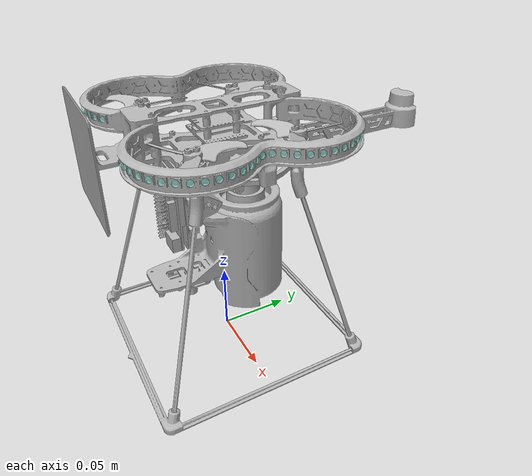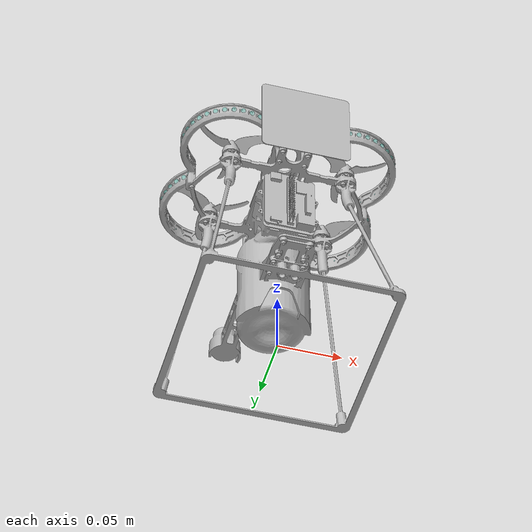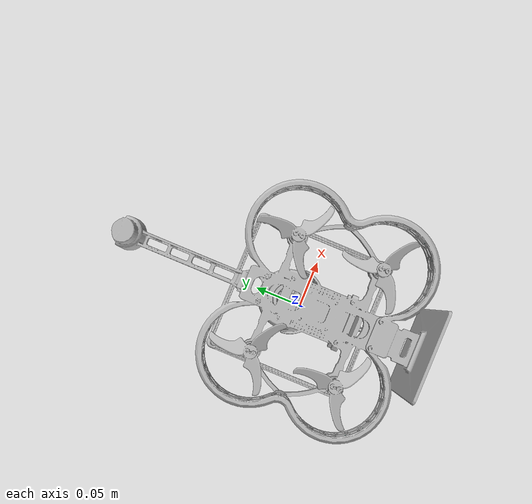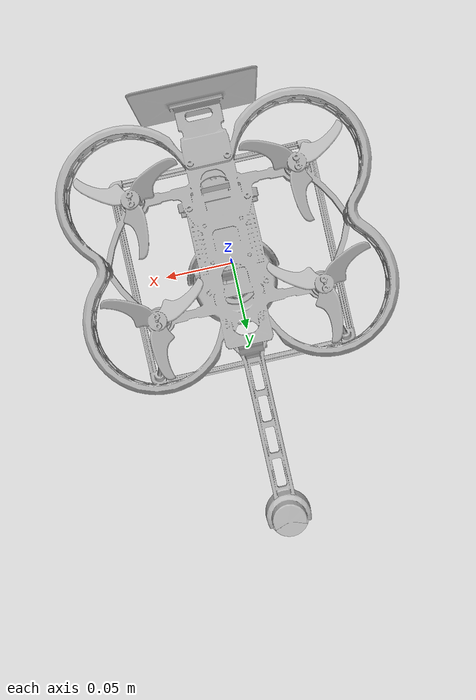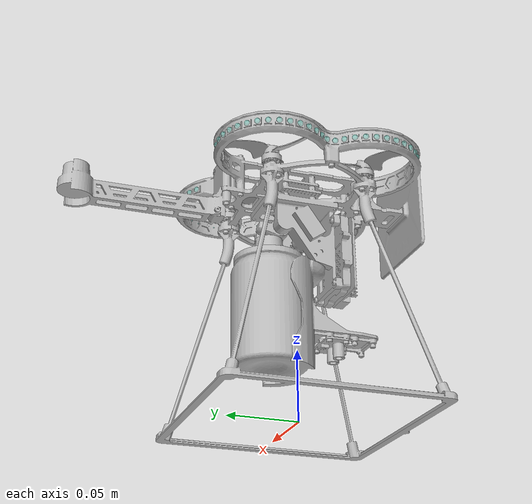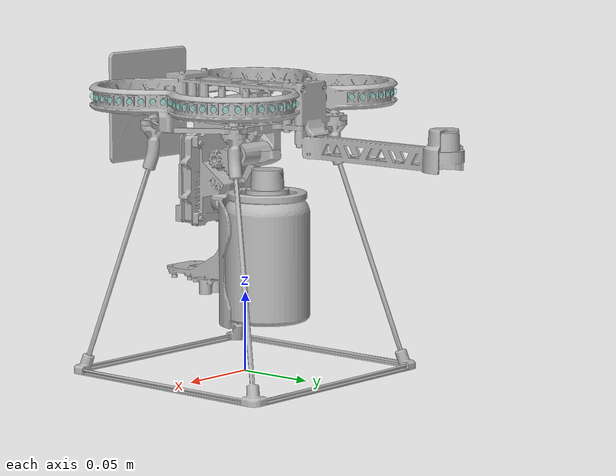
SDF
<?xml version='1.0' encoding='UTF-8'?>
<sdf version="1.9">
  <model name="x500_obrik_graffiti_base">
    <pose>0 0 0.15627 0 0 0</pose>
    <self_collide>false</self_collide>
    <static>false</static>
    <link name="base_link">
      <inertial>
        <mass>0.187</mass>
        <inertia>
          <ixx>0.000466</ixx>
          <ixy>0</ixy>
          <ixz>0</ixz>
          <iyy>0.000542</iyy>
          <iyz>0</iyz>
          <izz>0.000825</izz>
        </inertia>
      </inertial>
      <gravity>true</gravity>
      <velocity_decay />
      <collision name="obrik_body_collision">
        <pose>0 0 -0.057885 0 0 0</pose>
        <geometry>
          <box>
            <size>0.155 0.155 0.19677</size>
          </box>
        </geometry>
        <surface>
          <contact>
            <ode>
              <min_depth>0.001</min_depth>
              <max_vel>0</max_vel>
            </ode>
          </contact>
          <friction>
            <ode />
          </friction>
        </surface>
      </collision>
      <collision name="obrik_spray_cap_collision">
        <pose>0 0.085 -0.006 0 0 0</pose>
        <geometry>
          <box>
            <size>0.026 0.170 0.028</size>
          </box>
        </geometry>
        <surface>
          <contact>
            <ode>
              <min_depth>0.001</min_depth>
              <max_vel>0</max_vel>
            </ode>
          </contact>
          <friction>
            <ode />
          </friction>
        </surface>
      </collision>
      <visual name="obrik_body_visual">
        <pose>0 0 0 0 0 0</pose>
        <geometry>
          <mesh>
            <scale>1 1 1</scale>
            <uri>model://x500_obrik_graffiti_base/meshes/obrik_graffiti_clean.obj</uri>
          </mesh>
        </geometry>
      </visual>
      <sensor name="air_pressure_sensor" type="air_pressure">
        <always_on>1</always_on>
        <update_rate>50</update_rate>
        <air_pressure>
          <pressure>
            <noise type="gaussian">
              <mean>0</mean>
              <stddev>3</stddev>
            </noise>
          </pressure>
        </air_pressure>
      </sensor>
      <sensor name="magnetometer_sensor" type="magnetometer">
        <always_on>1</always_on>
        <update_rate>100</update_rate>
        <magnetometer>
          <x>
            <noise type="gaussian">
              <stddev>0.0001</stddev>
            </noise>
          </x>
          <y>
            <noise type="gaussian">
              <stddev>0.0001</stddev>
            </noise>
          </y>
          <z>
            <noise type="gaussian">
              <stddev>0.0001</stddev>
            </noise>
          </z>
        </magnetometer>
      </sensor>
      <sensor name="imu_sensor" type="imu">
        <always_on>1</always_on>
        <update_rate>250</update_rate>
        <imu>
          <angular_velocity>
            <x>
              <noise type="gaussian">
                <mean>0.0</mean>
                <stddev>0.0008726646</stddev>
              </noise>
            </x>
            <y>
              <noise type="gaussian">
                <mean>0.0</mean>
                <stddev>0.0008726646</stddev>
              </noise>
            </y>
            <z>
              <noise type="gaussian">
                <mean>0.0</mean>
                <stddev>0.0008726646</stddev>
              </noise>
            </z>
          </angular_velocity>
          <linear_acceleration>
            <x>
              <noise type="gaussian">
                <mean>0.0</mean>
                <stddev>0.00637</stddev>
              </noise>
            </x>
            <y>
              <noise type="gaussian">
                <mean>0.0</mean>
                <stddev>0.00637</stddev>
              </noise>
            </y>
            <z>
              <noise type="gaussian">
                <mean>0.0</mean>
                <stddev>0.00686</stddev>
              </noise>
            </z>
          </linear_acceleration>
        </imu>
      </sensor>
      <sensor name="navsat_sensor" type="navsat">
        <always_on>1</always_on>
        <update_rate>30</update_rate>
      </sensor>
    </link>
    <link name="gear_link">
      <pose relative_to="base_link">0.01963 -0.00774 -0.02186 0 0 0</pose>
      <gravity>false</gravity>
      <self_collide>false</self_collide>
      <inertial>
        <mass>0.01</mass>
        <inertia>
          <ixx>1e-5</ixx>
          <iyy>1e-5</iyy>
          <izz>1e-5</izz>
        </inertia>
      </inertial>
      <visual name="obrik_gear_visual">
        <pose>0 0 0 0 0 0</pose>
        <geometry>
          <mesh>
            <scale>1 1 1</scale>
            <uri>model://x500_obrik_graffiti_base/meshes/gear.obj</uri>
          </mesh>
        </geometry>
      </visual>
    </link>
    <link name="lever_link">
      <pose relative_to="base_link">0.01963 0.011783 -0.017527 0 0 0</pose>
      <gravity>false</gravity>
      <self_collide>false</self_collide>
      <inertial>
        <mass>0.01</mass>
        <inertia>
          <ixx>1e-5</ixx>
          <iyy>1e-5</iyy>
          <izz>1e-5</izz>
        </inertia>
      </inertial>
      <visual name="obrik_lever_visual">
        <pose>0 0 0 0 0 0</pose>
        <geometry>
          <mesh>
            <scale>1 1 1</scale>
            <uri>model://x500_obrik_graffiti_base/meshes/lever.obj</uri>
          </mesh>
        </geometry>
      </visual>
    </link>
    <link name="can_cap_link">
      <pose relative_to="base_link">0.000658 0.019283 -0.047528 3.14159265 0 0</pose>
      <gravity>false</gravity>
      <self_collide>false</self_collide>
      <inertial>
        <mass>0.01</mass>
        <inertia>
          <ixx>1e-5</ixx>
          <iyy>1e-5</iyy>
          <izz>1e-5</izz>
        </inertia>
      </inertial>
      <visual name="obrik_can_cap_visual">
        <pose>0 0 0 0 0 0</pose>
        <geometry>
          <mesh>
            <scale>1 1 1</scale>
            <uri>model://x500_obrik_graffiti_base/meshes/can_cap.obj</uri>
          </mesh>
        </geometry>
      </visual>
    </link>
    <joint name="gear_joint" type="revolute">
      <parent>base_link</parent>
      <child>gear_link</child>
      <axis>
        <xyz expressed_in="base_link">1 0 0</xyz>
        <limit>
          <lower>-1.2133333333</lower>
          <upper>1.82</upper>
          <effort>1</effort>
          <velocity>10</velocity>
        </limit>
        <dynamics>
          <damping>0.01</damping>
          <friction>0</friction>
        </dynamics>
      </axis>
    </joint>
    <joint name="lever_joint" type="revolute">
      <parent>base_link</parent>
      <child>lever_link</child>
      <axis>
        <xyz expressed_in="base_link">1 0 0</xyz>
        <limit>
          <lower>-0.62</lower>
          <upper>0.4133333333</upper>
          <effort>1</effort>
          <velocity>10</velocity>
        </limit>
        <dynamics>
          <damping>0.01</damping>
          <friction>0</friction>
        </dynamics>
      </axis>
    </joint>
    <joint name="can_cap_joint" type="prismatic">
      <parent>base_link</parent>
      <child>can_cap_link</child>
      <axis>
        <xyz expressed_in="base_link">0 0 -1</xyz>
        <limit>
          <lower>0</lower>
          <upper>0.003</upper>
          <effort>1</effort>
          <velocity>0.05</velocity>
        </limit>
        <dynamics>
          <damping>0.01</damping>
          <friction>0</friction>
        </dynamics>
      </axis>
    </joint>
    <link name="rotor_0">
      <gravity>true</gravity>
      <self_collide>false</self_collide>
      <velocity_decay />
      <pose>0.046111 -0.033581 0.013900 0 0 0</pose>
      <inertial>
        <mass>0.001</mass>
        <inertia>
          <ixx>2.8e-7</ixx>
          <iyy>2.9e-7</iyy>
          <izz>5.7e-7</izz>
        </inertia>
      </inertial>
      <visual name="obrik_prop_ccw_rear_right_visual">
        <pose>0 0 0 0 0 0</pose>
        <geometry>
          <mesh>
            <scale>1 1 1</scale>
            <uri>model://x500_obrik_graffiti_base/meshes/vmg_ccw.obj</uri>
          </mesh>
        </geometry>
      </visual>
    </link>
    <joint name="rotor_0_joint" type="revolute">
      <parent>base_link</parent>
      <child>rotor_0</child>
      <axis>
        <xyz>0 0 1</xyz>
        <limit>
          <lower>-1e+16</lower>
          <upper>1e+16</upper>
        </limit>
        <dynamics>
          <spring_reference>0</spring_reference>
          <spring_stiffness>0</spring_stiffness>
        </dynamics>
      </axis>
    </joint>
    <link name="rotor_1">
      <gravity>true</gravity>
      <self_collide>false</self_collide>
      <velocity_decay />
      <pose>-0.046111 0.033581 0.013900 0 0 0</pose>
      <inertial>
        <mass>0.001</mass>
        <inertia>
          <ixx>2.8e-7</ixx>
          <iyy>2.9e-7</iyy>
          <izz>5.7e-7</izz>
        </inertia>
      </inertial>
      <visual name="obrik_prop_ccw_front_left_visual">
        <pose>0 0 0 0 0 0</pose>
        <geometry>
          <mesh>
            <scale>1 1 1</scale>
            <uri>model://x500_obrik_graffiti_base/meshes/vmg_ccw.obj</uri>
          </mesh>
        </geometry>
      </visual>
    </link>
    <joint name="rotor_1_joint" type="revolute">
      <parent>base_link</parent>
      <child>rotor_1</child>
      <axis>
        <xyz>0 0 1</xyz>
        <limit>
          <lower>-1e+16</lower>
          <upper>1e+16</upper>
        </limit>
        <dynamics>
          <spring_reference>0</spring_reference>
          <spring_stiffness>0</spring_stiffness>
        </dynamics>
      </axis>
    </joint>
    <link name="rotor_2">
      <gravity>true</gravity>
      <self_collide>false</self_collide>
      <velocity_decay />
      <pose>0.046111 0.033581 0.013900 0 0 0</pose>
      <inertial>
        <mass>0.001</mass>
        <inertia>
          <ixx>2.8e-7</ixx>
          <iyy>2.9e-7</iyy>
          <izz>5.7e-7</izz>
        </inertia>
      </inertial>
      <visual name="obrik_prop_cw_front_right_visual">
        <pose>0 0 0 0 0 0</pose>
        <geometry>
          <mesh>
            <scale>1 1 1</scale>
            <uri>model://x500_obrik_graffiti_base/meshes/vmg_cw.obj</uri>
          </mesh>
        </geometry>
      </visual>
    </link>
    <joint name="rotor_2_joint" type="revolute">
      <parent>base_link</parent>
      <child>rotor_2</child>
      <axis>
        <xyz>0 0 1</xyz>
        <limit>
          <lower>-1e+16</lower>
          <upper>1e+16</upper>
        </limit>
        <dynamics>
          <spring_reference>0</spring_reference>
          <spring_stiffness>0</spring_stiffness>
        </dynamics>
      </axis>
    </joint>
    <link name="rotor_3">
      <gravity>true</gravity>
      <self_collide>false</self_collide>
      <velocity_decay />
      <pose>-0.046111 -0.033581 0.013900 0 0 0</pose>
      <inertial>
        <mass>0.001</mass>
        <inertia>
          <ixx>2.8e-7</ixx>
          <iyy>2.9e-7</iyy>
          <izz>5.7e-7</izz>
        </inertia>
      </inertial>
      <visual name="obrik_prop_cw_rear_left_visual">
        <pose>0 0 0 0 0 0</pose>
        <geometry>
          <mesh>
            <scale>1 1 1</scale>
            <uri>model://x500_obrik_graffiti_base/meshes/vmg_cw.obj</uri>
          </mesh>
        </geometry>
      </visual>
    </link>
    <joint name="rotor_3_joint" type="revolute">
      <parent>base_link</parent>
      <child>rotor_3</child>
      <axis>
        <xyz>0 0 1</xyz>
        <limit>
          <lower>-1e+16</lower>
          <upper>1e+16</upper>
        </limit>
        <dynamics>
          <spring_reference>0</spring_reference>
          <spring_stiffness>0</spring_stiffness>
        </dynamics>
      </axis>
    </joint>
    <!-- BEGIN generated Obrik LED point preview from C:/Users/evk41/Documents/leds_graffiti.dxf -->
    <link name="obrik_led_points_link">
      <pose relative_to="base_link">0 0.068033 0 0 0 0</pose>
      <gravity>false</gravity>
      <self_collide>false</self_collide>
      <inertial>
        <mass>0.00001</mass>
        <inertia>
          <ixx>1e-9</ixx>
          <iyy>1e-9</iyy>
          <izz>1e-9</izz>
          <ixy>0</ixy>
          <ixz>0</ixz>
          <iyz>0</iyz>
        </inertia>
      </inertial>
    <visual name="obrik_led_point_000">
      <pose>-0.046242 -0.138433 0.018040 0 0 0</pose>
      <geometry>
        <sphere>
          <radius>0.0020</radius>
        </sphere>
      </geometry>
      <material>
        <ambient>0.0 1.0 0.85 0.18</ambient>
        <diffuse>0.0 1.0 0.85 0.18</diffuse>
        <emissive>0.0 1.0 0.85 0.42</emissive>
      </material>
    </visual>

    <visual name="obrik_led_point_001">
      <pose>0.046242 -0.138433 0.018040 0 0 0</pose>
      <geometry>
        <sphere>
          <radius>0.0020</radius>
        </sphere>
      </geometry>
      <material>
        <ambient>0.0 1.0 0.85 0.18</ambient>
        <diffuse>0.0 1.0 0.85 0.18</diffuse>
        <emissive>0.0 1.0 0.85 0.42</emissive>
      </material>
    </visual>

    <visual name="obrik_led_point_002">
      <pose>-0.039131 -0.137749 0.018040 0 0 0</pose>
      <geometry>
        <sphere>
          <radius>0.0020</radius>
        </sphere>
      </geometry>
      <material>
        <ambient>0.0 1.0 0.85 0.18</ambient>
        <diffuse>0.0 1.0 0.85 0.18</diffuse>
        <emissive>0.0 1.0 0.85 0.42</emissive>
      </material>
    </visual>

    <visual name="obrik_led_point_003">
      <pose>0.039131 -0.137749 0.018040 0 0 0</pose>
      <geometry>
        <sphere>
          <radius>0.0020</radius>
        </sphere>
      </geometry>
      <material>
        <ambient>0.0 1.0 0.85 0.18</ambient>
        <diffuse>0.0 1.0 0.85 0.18</diffuse>
        <emissive>0.0 1.0 0.85 0.42</emissive>
      </material>
    </visual>

    <visual name="obrik_led_point_004">
      <pose>-0.053351 -0.137735 0.018040 0 0 0</pose>
      <geometry>
        <sphere>
          <radius>0.0020</radius>
        </sphere>
      </geometry>
      <material>
        <ambient>0.0 1.0 0.85 0.18</ambient>
        <diffuse>0.0 1.0 0.85 0.18</diffuse>
        <emissive>0.0 1.0 0.85 0.42</emissive>
      </material>
    </visual>

    <visual name="obrik_led_point_005">
      <pose>0.053351 -0.137735 0.018040 0 0 0</pose>
      <geometry>
        <sphere>
          <radius>0.0020</radius>
        </sphere>
      </geometry>
      <material>
        <ambient>0.0 1.0 0.85 0.18</ambient>
        <diffuse>0.0 1.0 0.85 0.18</diffuse>
        <emissive>0.0 1.0 0.85 0.42</emissive>
      </material>
    </visual>

    <visual name="obrik_led_point_006">
      <pose>-0.032286 -0.135708 0.018040 0 0 0</pose>
      <geometry>
        <sphere>
          <radius>0.0020</radius>
        </sphere>
      </geometry>
      <material>
        <ambient>0.0 1.0 0.85 0.18</ambient>
        <diffuse>0.0 1.0 0.85 0.18</diffuse>
        <emissive>0.0 1.0 0.85 0.42</emissive>
      </material>
    </visual>

    <visual name="obrik_led_point_007">
      <pose>0.032286 -0.135708 0.018040 0 0 0</pose>
      <geometry>
        <sphere>
          <radius>0.0020</radius>
        </sphere>
      </geometry>
      <material>
        <ambient>0.0 1.0 0.85 0.18</ambient>
        <diffuse>0.0 1.0 0.85 0.18</diffuse>
        <emissive>0.0 1.0 0.85 0.42</emissive>
      </material>
    </visual>

    <visual name="obrik_led_point_008">
      <pose>-0.060192 -0.135679 0.018040 0 0 0</pose>
      <geometry>
        <sphere>
          <radius>0.0020</radius>
        </sphere>
      </geometry>
      <material>
        <ambient>0.0 1.0 0.85 0.18</ambient>
        <diffuse>0.0 1.0 0.85 0.18</diffuse>
        <emissive>0.0 1.0 0.85 0.42</emissive>
      </material>
    </visual>
    <visual name="obrik_led_point_009">
      <pose>0.060192 -0.135679 0.018040 0 0 0</pose>
      <geometry>
        <sphere>
          <radius>0.0020</radius>
        </sphere>
      </geometry>
      <material>
        <ambient>0.0 1.0 0.85 0.18</ambient>
        <diffuse>0.0 1.0 0.85 0.18</diffuse>
        <emissive>0.0 1.0 0.85 0.42</emissive>
      </material>
    </visual>

    <visual name="obrik_led_point_010">
      <pose>-0.025962 -0.132386 0.018040 0 0 0</pose>
      <geometry>
        <sphere>
          <radius>0.0020</radius>
        </sphere>
      </geometry>
      <material>
        <ambient>0.0 1.0 0.85 0.18</ambient>
        <diffuse>0.0 1.0 0.85 0.18</diffuse>
        <emissive>0.0 1.0 0.85 0.42</emissive>
      </material>
    </visual>

    <visual name="obrik_led_point_011">
      <pose>0.025962 -0.132386 0.018040 0 0 0</pose>
      <geometry>
        <sphere>
          <radius>0.0020</radius>
        </sphere>
      </geometry>
      <material>
        <ambient>0.0 1.0 0.85 0.18</ambient>
        <diffuse>0.0 1.0 0.85 0.18</diffuse>
        <emissive>0.0 1.0 0.85 0.42</emissive>
      </material>
    </visual>

    <visual name="obrik_led_point_012">
      <pose>-0.066509 -0.132344 0.018040 0 0 0</pose>
      <geometry>
        <sphere>
          <radius>0.0020</radius>
        </sphere>
      </geometry>
      <material>
        <ambient>0.0 1.0 0.85 0.18</ambient>
        <diffuse>0.0 1.0 0.85 0.18</diffuse>
        <emissive>0.0 1.0 0.85 0.42</emissive>
      </material>
    </visual>

    <visual name="obrik_led_point_013">
      <pose>0.066509 -0.132344 0.018040 0 0 0</pose>
      <geometry>
        <sphere>
          <radius>0.0020</radius>
        </sphere>
      </geometry>
      <material>
        <ambient>0.0 1.0 0.85 0.18</ambient>
        <diffuse>0.0 1.0 0.85 0.18</diffuse>
        <emissive>0.0 1.0 0.85 0.42</emissive>
      </material>
    </visual>

    <visual name="obrik_led_point_014">
      <pose>-0.072065 -0.127854 0.018040 0 0 0</pose>
      <geometry>
        <sphere>
          <radius>0.0020</radius>
        </sphere>
      </geometry>
      <material>
        <ambient>0.0 1.0 0.85 0.18</ambient>
        <diffuse>0.0 1.0 0.85 0.18</diffuse>
        <emissive>0.0 1.0 0.85 0.42</emissive>
      </material>
    </visual>

    <visual name="obrik_led_point_015">
      <pose>0.072065 -0.127854 0.018040 0 0 0</pose>
      <geometry>
        <sphere>
          <radius>0.0020</radius>
        </sphere>
      </geometry>
      <material>
        <ambient>0.0 1.0 0.85 0.18</ambient>
        <diffuse>0.0 1.0 0.85 0.18</diffuse>
        <emissive>0.0 1.0 0.85 0.42</emissive>
      </material>
    </visual>

    <visual name="obrik_led_point_016">
      <pose>-0.076652 -0.122378 0.018040 0 0 0</pose>
      <geometry>
        <sphere>
          <radius>0.0020</radius>
        </sphere>
      </geometry>
      <material>
        <ambient>0.0 1.0 0.85 0.18</ambient>
        <diffuse>0.0 1.0 0.85 0.18</diffuse>
        <emissive>0.0 1.0 0.85 0.42</emissive>
      </material>
    </visual>
    <visual name="obrik_led_point_017">
      <pose>0.076652 -0.122378 0.018040 0 0 0</pose>
      <geometry>
        <sphere>
          <radius>0.0020</radius>
        </sphere>
      </geometry>
      <material>
        <ambient>0.0 1.0 0.85 0.18</ambient>
        <diffuse>0.0 1.0 0.85 0.18</diffuse>
        <emissive>0.0 1.0 0.85 0.42</emissive>
      </material>
    </visual>

    <visual name="obrik_led_point_018">
      <pose>-0.080098 -0.116121 0.018040 0 0 0</pose>
      <geometry>
        <sphere>
          <radius>0.0020</radius>
        </sphere>
      </geometry>
      <material>
        <ambient>0.0 1.0 0.85 0.18</ambient>
        <diffuse>0.0 1.0 0.85 0.18</diffuse>
        <emissive>0.0 1.0 0.85 0.42</emissive>
      </material>
    </visual>

    <visual name="obrik_led_point_019">
      <pose>0.080098 -0.116121 0.018040 0 0 0</pose>
      <geometry>
        <sphere>
          <radius>0.0020</radius>
        </sphere>
      </geometry>
      <material>
        <ambient>0.0 1.0 0.85 0.18</ambient>
        <diffuse>0.0 1.0 0.85 0.18</diffuse>
        <emissive>0.0 1.0 0.85 0.42</emissive>
      </material>
    </visual>

    <visual name="obrik_led_point_020">
      <pose>-0.082273 -0.109317 0.018040 0 0 0</pose>
      <geometry>
        <sphere>
          <radius>0.0020</radius>
        </sphere>
      </geometry>
      <material>
        <ambient>0.0 1.0 0.85 0.18</ambient>
        <diffuse>0.0 1.0 0.85 0.18</diffuse>
        <emissive>0.0 1.0 0.85 0.42</emissive>
      </material>
    </visual>
    <visual name="obrik_led_point_021">
      <pose>0.082273 -0.109317 0.018040 0 0 0</pose>
      <geometry>
        <sphere>
          <radius>0.0020</radius>
        </sphere>
      </geometry>
      <material>
        <ambient>0.0 1.0 0.85 0.18</ambient>
        <diffuse>0.0 1.0 0.85 0.18</diffuse>
        <emissive>0.0 1.0 0.85 0.42</emissive>
      </material>
    </visual>

    <visual name="obrik_led_point_022">
      <pose>-0.083097 -0.102221 0.018040 0 0 0</pose>
      <geometry>
        <sphere>
          <radius>0.0020</radius>
        </sphere>
      </geometry>
      <material>
        <ambient>0.0 1.0 0.85 0.18</ambient>
        <diffuse>0.0 1.0 0.85 0.18</diffuse>
        <emissive>0.0 1.0 0.85 0.42</emissive>
      </material>
    </visual>

    <visual name="obrik_led_point_023">
      <pose>0.083097 -0.102221 0.018040 0 0 0</pose>
      <geometry>
        <sphere>
          <radius>0.0020</radius>
        </sphere>
      </geometry>
      <material>
        <ambient>0.0 1.0 0.85 0.18</ambient>
        <diffuse>0.0 1.0 0.85 0.18</diffuse>
        <emissive>0.0 1.0 0.85 0.42</emissive>
      </material>
    </visual>

    <visual name="obrik_led_point_024">
      <pose>-0.082538 -0.095100 0.018040 0 0 0</pose>
      <geometry>
        <sphere>
          <radius>0.0020</radius>
        </sphere>
      </geometry>
      <material>
        <ambient>0.0 1.0 0.85 0.18</ambient>
        <diffuse>0.0 1.0 0.85 0.18</diffuse>
        <emissive>0.0 1.0 0.85 0.42</emissive>
      </material>
    </visual>

    <visual name="obrik_led_point_025">
      <pose>0.082538 -0.095100 0.018040 0 0 0</pose>
      <geometry>
        <sphere>
          <radius>0.0020</radius>
        </sphere>
      </geometry>
      <material>
        <ambient>0.0 1.0 0.85 0.18</ambient>
        <diffuse>0.0 1.0 0.85 0.18</diffuse>
        <emissive>0.0 1.0 0.85 0.42</emissive>
      </material>
    </visual>

    <visual name="obrik_led_point_026">
      <pose>-0.080618 -0.088219 0.018040 0 0 0</pose>
      <geometry>
        <sphere>
          <radius>0.0020</radius>
        </sphere>
      </geometry>
      <material>
        <ambient>0.0 1.0 0.85 0.18</ambient>
        <diffuse>0.0 1.0 0.85 0.18</diffuse>
        <emissive>0.0 1.0 0.85 0.42</emissive>
      </material>
    </visual>
    <visual name="obrik_led_point_027">
      <pose>0.080618 -0.088219 0.018040 0 0 0</pose>
      <geometry>
        <sphere>
          <radius>0.0020</radius>
        </sphere>
      </geometry>
      <material>
        <ambient>0.0 1.0 0.85 0.18</ambient>
        <diffuse>0.0 1.0 0.85 0.18</diffuse>
        <emissive>0.0 1.0 0.85 0.42</emissive>
      </material>
    </visual>

    <visual name="obrik_led_point_028">
      <pose>-0.077408 -0.081838 0.018040 0 0 0</pose>
      <geometry>
        <sphere>
          <radius>0.0020</radius>
        </sphere>
      </geometry>
      <material>
        <ambient>0.0 1.0 0.85 0.18</ambient>
        <diffuse>0.0 1.0 0.85 0.18</diffuse>
        <emissive>0.0 1.0 0.85 0.42</emissive>
      </material>
    </visual>
    <visual name="obrik_led_point_029">
      <pose>0.077408 -0.081838 0.018040 0 0 0</pose>
      <geometry>
        <sphere>
          <radius>0.0020</radius>
        </sphere>
      </geometry>
      <material>
        <ambient>0.0 1.0 0.85 0.18</ambient>
        <diffuse>0.0 1.0 0.85 0.18</diffuse>
        <emissive>0.0 1.0 0.85 0.42</emissive>
      </material>
    </visual>

    <visual name="obrik_led_point_030">
      <pose>-0.073028 -0.076195 0.018040 0 0 0</pose>
      <geometry>
        <sphere>
          <radius>0.0020</radius>
        </sphere>
      </geometry>
      <material>
        <ambient>0.0 1.0 0.85 0.18</ambient>
        <diffuse>0.0 1.0 0.85 0.18</diffuse>
        <emissive>0.0 1.0 0.85 0.42</emissive>
      </material>
    </visual>

    <visual name="obrik_led_point_031">
      <pose>0.073028 -0.076195 0.018040 0 0 0</pose>
      <geometry>
        <sphere>
          <radius>0.0020</radius>
        </sphere>
      </geometry>
      <material>
        <ambient>0.0 1.0 0.85 0.18</ambient>
        <diffuse>0.0 1.0 0.85 0.18</diffuse>
        <emissive>0.0 1.0 0.85 0.42</emissive>
      </material>
    </visual>

    <visual name="obrik_led_point_032">
      <pose>-0.069342 -0.071058 0.018040 0 0 0</pose>
      <geometry>
        <sphere>
          <radius>0.0020</radius>
        </sphere>
      </geometry>
      <material>
        <ambient>0.0 1.0 0.85 0.18</ambient>
        <diffuse>0.0 1.0 0.85 0.18</diffuse>
        <emissive>0.0 1.0 0.85 0.42</emissive>
      </material>
    </visual>
    <visual name="obrik_led_point_033">
      <pose>0.069342 -0.071058 0.018040 0 0 0</pose>
      <geometry>
        <sphere>
          <radius>0.0020</radius>
        </sphere>
      </geometry>
      <material>
        <ambient>0.0 1.0 0.85 0.18</ambient>
        <diffuse>0.0 1.0 0.85 0.18</diffuse>
        <emissive>0.0 1.0 0.85 0.42</emissive>
      </material>
    </visual>

    <visual name="obrik_led_point_034">
      <pose>-0.069342 -0.065009 0.018040 0 0 0</pose>
      <geometry>
        <sphere>
          <radius>0.0020</radius>
        </sphere>
      </geometry>
      <material>
        <ambient>0.0 1.0 0.85 0.18</ambient>
        <diffuse>0.0 1.0 0.85 0.18</diffuse>
        <emissive>0.0 1.0 0.85 0.42</emissive>
      </material>
    </visual>

    <visual name="obrik_led_point_035">
      <pose>0.069342 -0.065009 0.018040 0 0 0</pose>
      <geometry>
        <sphere>
          <radius>0.0020</radius>
        </sphere>
      </geometry>
      <material>
        <ambient>0.0 1.0 0.85 0.18</ambient>
        <diffuse>0.0 1.0 0.85 0.18</diffuse>
        <emissive>0.0 1.0 0.85 0.42</emissive>
      </material>
    </visual>

    <visual name="obrik_led_point_036">
      <pose>-0.073028 -0.059872 0.018040 0 0 0</pose>
      <geometry>
        <sphere>
          <radius>0.0020</radius>
        </sphere>
      </geometry>
      <material>
        <ambient>0.0 1.0 0.85 0.18</ambient>
        <diffuse>0.0 1.0 0.85 0.18</diffuse>
        <emissive>0.0 1.0 0.85 0.42</emissive>
      </material>
    </visual>
    <visual name="obrik_led_point_037">
      <pose>0.073028 -0.059872 0.018040 0 0 0</pose>
      <geometry>
        <sphere>
          <radius>0.0020</radius>
        </sphere>
      </geometry>
      <material>
        <ambient>0.0 1.0 0.85 0.18</ambient>
        <diffuse>0.0 1.0 0.85 0.18</diffuse>
        <emissive>0.0 1.0 0.85 0.42</emissive>
      </material>
    </visual>

    <visual name="obrik_led_point_038">
      <pose>-0.077408 -0.054229 0.018040 0 0 0</pose>
      <geometry>
        <sphere>
          <radius>0.0020</radius>
        </sphere>
      </geometry>
      <material>
        <ambient>0.0 1.0 0.85 0.18</ambient>
        <diffuse>0.0 1.0 0.85 0.18</diffuse>
        <emissive>0.0 1.0 0.85 0.42</emissive>
      </material>
    </visual>

    <visual name="obrik_led_point_039">
      <pose>0.077408 -0.054229 0.018040 0 0 0</pose>
      <geometry>
        <sphere>
          <radius>0.0020</radius>
        </sphere>
      </geometry>
      <material>
        <ambient>0.0 1.0 0.85 0.18</ambient>
        <diffuse>0.0 1.0 0.85 0.18</diffuse>
        <emissive>0.0 1.0 0.85 0.42</emissive>
      </material>
    </visual>

    <visual name="obrik_led_point_040">
      <pose>-0.080618 -0.047848 0.018040 0 0 0</pose>
      <geometry>
        <sphere>
          <radius>0.0020</radius>
        </sphere>
      </geometry>
      <material>
        <ambient>0.0 1.0 0.85 0.18</ambient>
        <diffuse>0.0 1.0 0.85 0.18</diffuse>
        <emissive>0.0 1.0 0.85 0.42</emissive>
      </material>
    </visual>

    <visual name="obrik_led_point_041">
      <pose>0.080618 -0.047848 0.018040 0 0 0</pose>
      <geometry>
        <sphere>
          <radius>0.0020</radius>
        </sphere>
      </geometry>
      <material>
        <ambient>0.0 1.0 0.85 0.18</ambient>
        <diffuse>0.0 1.0 0.85 0.18</diffuse>
        <emissive>0.0 1.0 0.85 0.42</emissive>
      </material>
    </visual>

    <visual name="obrik_led_point_042">
      <pose>-0.082538 -0.040967 0.018040 0 0 0</pose>
      <geometry>
        <sphere>
          <radius>0.0020</radius>
        </sphere>
      </geometry>
      <material>
        <ambient>0.0 1.0 0.85 0.18</ambient>
        <diffuse>0.0 1.0 0.85 0.18</diffuse>
        <emissive>0.0 1.0 0.85 0.42</emissive>
      </material>
    </visual>
    <visual name="obrik_led_point_043">
      <pose>0.082538 -0.040967 0.018040 0 0 0</pose>
      <geometry>
        <sphere>
          <radius>0.0020</radius>
        </sphere>
      </geometry>
      <material>
        <ambient>0.0 1.0 0.85 0.18</ambient>
        <diffuse>0.0 1.0 0.85 0.18</diffuse>
        <emissive>0.0 1.0 0.85 0.42</emissive>
      </material>
    </visual>

    <visual name="obrik_led_point_044">
      <pose>-0.083097 -0.033846 0.018040 0 0 0</pose>
      <geometry>
        <sphere>
          <radius>0.0020</radius>
        </sphere>
      </geometry>
      <material>
        <ambient>0.0 1.0 0.85 0.18</ambient>
        <diffuse>0.0 1.0 0.85 0.18</diffuse>
        <emissive>0.0 1.0 0.85 0.42</emissive>
      </material>
    </visual>

    <visual name="obrik_led_point_045">
      <pose>0.083097 -0.033846 0.018040 0 0 0</pose>
      <geometry>
        <sphere>
          <radius>0.0020</radius>
        </sphere>
      </geometry>
      <material>
        <ambient>0.0 1.0 0.85 0.18</ambient>
        <diffuse>0.0 1.0 0.85 0.18</diffuse>
        <emissive>0.0 1.0 0.85 0.42</emissive>
      </material>
    </visual>

    <visual name="obrik_led_point_046">
      <pose>-0.082274 -0.026750 0.018040 0 0 0</pose>
      <geometry>
        <sphere>
          <radius>0.0020</radius>
        </sphere>
      </geometry>
      <material>
        <ambient>0.0 1.0 0.85 0.18</ambient>
        <diffuse>0.0 1.0 0.85 0.18</diffuse>
        <emissive>0.0 1.0 0.85 0.42</emissive>
      </material>
    </visual>

    <visual name="obrik_led_point_047">
      <pose>0.082274 -0.026750 0.018040 0 0 0</pose>
      <geometry>
        <sphere>
          <radius>0.0020</radius>
        </sphere>
      </geometry>
      <material>
        <ambient>0.0 1.0 0.85 0.18</ambient>
        <diffuse>0.0 1.0 0.85 0.18</diffuse>
        <emissive>0.0 1.0 0.85 0.42</emissive>
      </material>
    </visual>

    <visual name="obrik_led_point_048">
      <pose>-0.080098 -0.019946 0.018040 0 0 0</pose>
      <geometry>
        <sphere>
          <radius>0.0020</radius>
        </sphere>
      </geometry>
      <material>
        <ambient>0.0 1.0 0.85 0.18</ambient>
        <diffuse>0.0 1.0 0.85 0.18</diffuse>
        <emissive>0.0 1.0 0.85 0.42</emissive>
      </material>
    </visual>

    <visual name="obrik_led_point_049">
      <pose>0.080098 -0.019946 0.018040 0 0 0</pose>
      <geometry>
        <sphere>
          <radius>0.0020</radius>
        </sphere>
      </geometry>
      <material>
        <ambient>0.0 1.0 0.85 0.18</ambient>
        <diffuse>0.0 1.0 0.85 0.18</diffuse>
        <emissive>0.0 1.0 0.85 0.42</emissive>
      </material>
    </visual>

    <visual name="obrik_led_point_050">
      <pose>-0.076652 -0.013689 0.018040 0 0 0</pose>
      <geometry>
        <sphere>
          <radius>0.0020</radius>
        </sphere>
      </geometry>
      <material>
        <ambient>0.0 1.0 0.85 0.18</ambient>
        <diffuse>0.0 1.0 0.85 0.18</diffuse>
        <emissive>0.0 1.0 0.85 0.42</emissive>
      </material>
    </visual>
    <visual name="obrik_led_point_051">
      <pose>0.076652 -0.013689 0.018040 0 0 0</pose>
      <geometry>
        <sphere>
          <radius>0.0020</radius>
        </sphere>
      </geometry>
      <material>
        <ambient>0.0 1.0 0.85 0.18</ambient>
        <diffuse>0.0 1.0 0.85 0.18</diffuse>
        <emissive>0.0 1.0 0.85 0.42</emissive>
      </material>
    </visual>

    <visual name="obrik_led_point_052">
      <pose>-0.072066 -0.008213 0.018040 0 0 0</pose>
      <geometry>
        <sphere>
          <radius>0.0020</radius>
        </sphere>
      </geometry>
      <material>
        <ambient>0.0 1.0 0.85 0.18</ambient>
        <diffuse>0.0 1.0 0.85 0.18</diffuse>
        <emissive>0.0 1.0 0.85 0.42</emissive>
      </material>
    </visual>
    <visual name="obrik_led_point_053">
      <pose>0.072066 -0.008213 0.018040 0 0 0</pose>
      <geometry>
        <sphere>
          <radius>0.0020</radius>
        </sphere>
      </geometry>
      <material>
        <ambient>0.0 1.0 0.85 0.18</ambient>
        <diffuse>0.0 1.0 0.85 0.18</diffuse>
        <emissive>0.0 1.0 0.85 0.42</emissive>
      </material>
    </visual>

    <visual name="obrik_led_point_054">
      <pose>-0.066510 -0.003723 0.018040 0 0 0</pose>
      <geometry>
        <sphere>
          <radius>0.0020</radius>
        </sphere>
      </geometry>
      <material>
        <ambient>0.0 1.0 0.85 0.18</ambient>
        <diffuse>0.0 1.0 0.85 0.18</diffuse>
        <emissive>0.0 1.0 0.85 0.42</emissive>
      </material>
    </visual>

    <visual name="obrik_led_point_055">
      <pose>0.066510 -0.003723 0.018040 0 0 0</pose>
      <geometry>
        <sphere>
          <radius>0.0020</radius>
        </sphere>
      </geometry>
      <material>
        <ambient>0.0 1.0 0.85 0.18</ambient>
        <diffuse>0.0 1.0 0.85 0.18</diffuse>
        <emissive>0.0 1.0 0.85 0.42</emissive>
      </material>
    </visual>

    <visual name="obrik_led_point_056">
      <pose>-0.025962 -0.003681 0.018040 0 0 0</pose>
      <geometry>
        <sphere>
          <radius>0.0020</radius>
        </sphere>
      </geometry>
      <material>
        <ambient>0.0 1.0 0.85 0.18</ambient>
        <diffuse>0.0 1.0 0.85 0.18</diffuse>
        <emissive>0.0 1.0 0.85 0.42</emissive>
      </material>
    </visual>
    <visual name="obrik_led_point_057">
      <pose>0.025962 -0.003681 0.018040 0 0 0</pose>
      <geometry>
        <sphere>
          <radius>0.0020</radius>
        </sphere>
      </geometry>
      <material>
        <ambient>0.0 1.0 0.85 0.18</ambient>
        <diffuse>0.0 1.0 0.85 0.18</diffuse>
        <emissive>0.0 1.0 0.85 0.42</emissive>
      </material>
    </visual>

    <visual name="obrik_led_point_058">
      <pose>-0.060193 -0.000388 0.018040 0 0 0</pose>
      <geometry>
        <sphere>
          <radius>0.0020</radius>
        </sphere>
      </geometry>
      <material>
        <ambient>0.0 1.0 0.85 0.18</ambient>
        <diffuse>0.0 1.0 0.85 0.18</diffuse>
        <emissive>0.0 1.0 0.85 0.42</emissive>
      </material>
    </visual>

    <visual name="obrik_led_point_059">
      <pose>0.060193 -0.000388 0.018040 0 0 0</pose>
      <geometry>
        <sphere>
          <radius>0.0020</radius>
        </sphere>
      </geometry>
      <material>
        <ambient>0.0 1.0 0.85 0.18</ambient>
        <diffuse>0.0 1.0 0.85 0.18</diffuse>
        <emissive>0.0 1.0 0.85 0.42</emissive>
      </material>
    </visual>

    <visual name="obrik_led_point_060">
      <pose>-0.032286 -0.000359 0.018040 0 0 0</pose>
      <geometry>
        <sphere>
          <radius>0.0020</radius>
        </sphere>
      </geometry>
      <material>
        <ambient>0.0 1.0 0.85 0.18</ambient>
        <diffuse>0.0 1.0 0.85 0.18</diffuse>
        <emissive>0.0 1.0 0.85 0.42</emissive>
      </material>
    </visual>
    <visual name="obrik_led_point_061">
      <pose>0.032286 -0.000359 0.018040 0 0 0</pose>
      <geometry>
        <sphere>
          <radius>0.0020</radius>
        </sphere>
      </geometry>
      <material>
        <ambient>0.0 1.0 0.85 0.18</ambient>
        <diffuse>0.0 1.0 0.85 0.18</diffuse>
        <emissive>0.0 1.0 0.85 0.42</emissive>
      </material>
    </visual>

    <visual name="obrik_led_point_062">
      <pose>-0.053351 0.001668 0.018040 0 0 0</pose>
      <geometry>
        <sphere>
          <radius>0.0020</radius>
        </sphere>
      </geometry>
      <material>
        <ambient>0.0 1.0 0.85 0.18</ambient>
        <diffuse>0.0 1.0 0.85 0.18</diffuse>
        <emissive>0.0 1.0 0.85 0.42</emissive>
      </material>
    </visual>

    <visual name="obrik_led_point_063">
      <pose>0.053351 0.001668 0.018040 0 0 0</pose>
      <geometry>
        <sphere>
          <radius>0.0020</radius>
        </sphere>
      </geometry>
      <material>
        <ambient>0.0 1.0 0.85 0.18</ambient>
        <diffuse>0.0 1.0 0.85 0.18</diffuse>
        <emissive>0.0 1.0 0.85 0.42</emissive>
      </material>
    </visual>

    <visual name="obrik_led_point_064">
      <pose>-0.039132 0.001683 0.018040 0 0 0</pose>
      <geometry>
        <sphere>
          <radius>0.0020</radius>
        </sphere>
      </geometry>
      <material>
        <ambient>0.0 1.0 0.85 0.18</ambient>
        <diffuse>0.0 1.0 0.85 0.18</diffuse>
        <emissive>0.0 1.0 0.85 0.42</emissive>
      </material>
    </visual>
    <visual name="obrik_led_point_065">
      <pose>0.039132 0.001683 0.018040 0 0 0</pose>
      <geometry>
        <sphere>
          <radius>0.0020</radius>
        </sphere>
      </geometry>
      <material>
        <ambient>0.0 1.0 0.85 0.18</ambient>
        <diffuse>0.0 1.0 0.85 0.18</diffuse>
        <emissive>0.0 1.0 0.85 0.42</emissive>
      </material>
    </visual>

    <visual name="obrik_led_point_066">
      <pose>-0.046242 0.002367 0.018040 0 0 0</pose>
      <geometry>
        <sphere>
          <radius>0.0020</radius>
        </sphere>
      </geometry>
      <material>
        <ambient>0.0 1.0 0.85 0.18</ambient>
        <diffuse>0.0 1.0 0.85 0.18</diffuse>
        <emissive>0.0 1.0 0.85 0.42</emissive>
      </material>
    </visual>

    <visual name="obrik_led_point_067">
      <pose>0.046242 0.002367 0.018040 0 0 0</pose>
      <geometry>
        <sphere>
          <radius>0.0020</radius>
        </sphere>
      </geometry>
      <material>
        <ambient>0.0 1.0 0.85 0.18</ambient>
        <diffuse>0.0 1.0 0.85 0.18</diffuse>
        <emissive>0.0 1.0 0.85 0.42</emissive>
      </material>
    </visual>

    </link>
    <joint name="obrik_led_points_fixed" type="fixed">
      <parent>base_link</parent>
      <child>obrik_led_points_link</child>
    </joint>
    <!-- END generated Obrik LED point preview -->

  </model>
</sdf>
